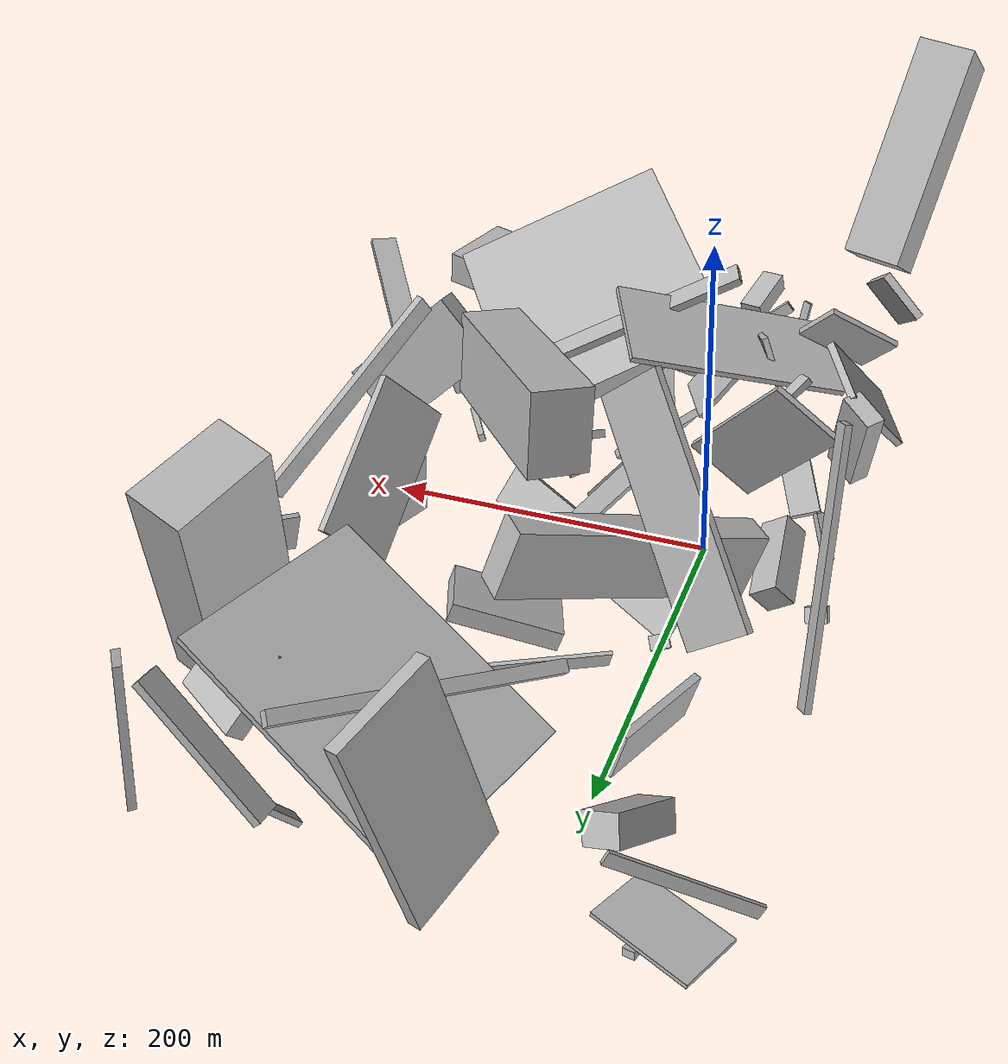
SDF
<sdf version="1.6">
 <world name="default">
  <model name="building_1">
   <static>0</static>
   <pose>24.793096692498303 168.19581139344137 49.5074049296235 1.1312948946642172 -0.8036517229261205 2.786725473333905</pose>
   <link name="link">
    <gravity>0</gravity>
    <pose>0 0 75.0 0 0 0</pose>
    <collision name="collision"><geometry><box><size>6 7 150</size></box></geometry></collision>
    <visual name="visual">
     <cast_shadows>0</cast_shadows>
     <geometry><box><size>6 7 150</size></box></geometry>
     <material>
      <script>
       <uri>model://HANNAS_wall/materials/scripts</uri>
       <uri>model://HANNAS_wall/materials/textures</uri>
       <name>vrc/HANNAS_wall</name>
      </script>
     </material>
    </visual>
   </link>
  </model>
  <model name="building_2">
   <static>0</static>
   <pose>168.8053396713834 -48.62277285303505 24.26431392203352 1.2881864655221158 0.8591324916611116 -1.2367148399571342</pose>
   <link name="link">
    <gravity>0</gravity>
    <pose>0 0 2.0 0 0 0</pose>
    <collision name="collision"><geometry><box><size>16 19 4</size></box></geometry></collision>
    <visual name="visual">
     <cast_shadows>0</cast_shadows>
     <geometry><box><size>16 19 4</size></box></geometry>
     <material>
      <script>
       <uri>model://HANNAS_wall/materials/scripts</uri>
       <uri>model://HANNAS_wall/materials/textures</uri>
       <name>vrc/HANNAS_wall</name>
      </script>
     </material>
    </visual>
   </link>
  </model>
  <model name="building_3">
   <static>0</static>
   <pose>-59.367864720709136 -232.25239375942581 92.4109905532498 0.5306030439082318 -0.10531091900524221 -0.18735043741369478</pose>
   <link name="link">
    <gravity>0</gravity>
    <pose>0 0 75.0 0 0 0</pose>
    <collision name="collision"><geometry><box><size>38 52 150</size></box></geometry></collision>
    <visual name="visual">
     <cast_shadows>0</cast_shadows>
     <geometry><box><size>38 52 150</size></box></geometry>
     <material>
      <script>
       <uri>model://HANNAS_wall/materials/scripts</uri>
       <uri>model://HANNAS_wall/materials/textures</uri>
       <name>vrc/HANNAS_wall</name>
      </script>
     </material>
    </visual>
   </link>
  </model>
  <model name="building_7">
   <static>0</static>
   <pose>124.69951320487586 -160.69138520778654 67.32807591150723 0.41972504675591227 -0.38616532295552297 -2.643007711229868</pose>
   <link name="link">
    <gravity>0</gravity>
    <pose>0 0 8.0 0 0 0</pose>
    <collision name="collision"><geometry><box><size>150 150 16</size></box></geometry></collision>
    <visual name="visual">
     <cast_shadows>0</cast_shadows>
     <geometry><box><size>150 150 16</size></box></geometry>
     <material>
      <script>
       <uri>model://HANNAS_wall/materials/scripts</uri>
       <uri>model://HANNAS_wall/materials/textures</uri>
       <name>vrc/HANNAS_wall</name>
      </script>
     </material>
    </visual>
   </link>
  </model>
  <model name="building_8">
   <static>0</static>
   <pose>204.80048753554155 -47.702159353812945 38.16444684129837 0.2839961623136981 1.0717549493889884 -0.6077870350495469</pose>
   <link name="link">
    <gravity>0</gravity>
    <pose>0 0 67.0 0 0 0</pose>
    <collision name="collision"><geometry><box><size>4 17 134</size></box></geometry></collision>
    <visual name="visual">
     <cast_shadows>0</cast_shadows>
     <geometry><box><size>4 17 134</size></box></geometry>
     <material>
      <script>
       <uri>model://HANNAS_wall/materials/scripts</uri>
       <uri>model://HANNAS_wall/materials/textures</uri>
       <name>vrc/HANNAS_wall</name>
      </script>
     </material>
    </visual>
   </link>
  </model>
  <model name="building_10">
   <static>0</static>
   <pose>-47.68959779084474 154.3647860653389 73.10178761752809 -0.33368092463802806 -0.7245051040565622 2.835484990418137</pose>
   <link name="link">
    <gravity>0</gravity>
    <pose>0 0 65.5 0 0 0</pose>
    <collision name="collision"><geometry><box><size>43 4 131</size></box></geometry></collision>
    <visual name="visual">
     <cast_shadows>0</cast_shadows>
     <geometry><box><size>43 4 131</size></box></geometry>
     <material>
      <script>
       <uri>model://HANNAS_wall/materials/scripts</uri>
       <uri>model://HANNAS_wall/materials/textures</uri>
       <name>vrc/HANNAS_wall</name>
      </script>
     </material>
    </visual>
   </link>
  </model>
  <model name="building_11">
   <static>0</static>
   <pose>38.94238117270541 254.09804892316535 76.96646925720617 1.7350891535008843 -0.11104195794203885 2.8328328251791577</pose>
   <link name="link">
    <gravity>0</gravity>
    <pose>0 0 26.5 0 0 0</pose>
    <collision name="collision"><geometry><box><size>7 114 53</size></box></geometry></collision>
    <visual name="visual">
     <cast_shadows>0</cast_shadows>
     <geometry><box><size>7 114 53</size></box></geometry>
     <material>
      <script>
       <uri>model://HANNAS_wall/materials/scripts</uri>
       <uri>model://HANNAS_wall/materials/textures</uri>
       <name>vrc/HANNAS_wall</name>
      </script>
     </material>
    </visual>
   </link>
  </model>
  <model name="building_12">
   <static>0</static>
   <pose>92.06836739142696 4.750236727504768 100.409990952442 -0.7303589296694571 -1.402763171710577 -1.6966336196243017</pose>
   <link name="link">
    <gravity>0</gravity>
    <pose>0 0 18.0 0 0 0</pose>
    <collision name="collision"><geometry><box><size>51 125 36</size></box></geometry></collision>
    <visual name="visual">
     <cast_shadows>0</cast_shadows>
     <geometry><box><size>51 125 36</size></box></geometry>
     <material>
      <script>
       <uri>model://HANNAS_wall/materials/scripts</uri>
       <uri>model://HANNAS_wall/materials/textures</uri>
       <name>vrc/HANNAS_wall</name>
      </script>
     </material>
    </visual>
   </link>
  </model>
  <model name="building_14">
   <static>0</static>
   <pose>107.75886185038104 208.34520341155167 46.10967357507414 0.040087765200739 -0.47666089245156523 -0.2999473800195148</pose>
   <link name="link">
    <gravity>0</gravity>
    <pose>0 0 2.0 0 0 0</pose>
    <collision name="collision"><geometry><box><size>150 108 4</size></box></geometry></collision>
    <visual name="visual">
     <cast_shadows>0</cast_shadows>
     <geometry><box><size>150 108 4</size></box></geometry>
     <material>
      <script>
       <uri>model://HANNAS_wall/materials/scripts</uri>
       <uri>model://HANNAS_wall/materials/textures</uri>
       <name>vrc/HANNAS_wall</name>
      </script>
     </material>
    </visual>
   </link>
  </model>
  <model name="building_17">
   <static>0</static>
   <pose>-55.43925519525918 -143.04767132898246 76.77545361847622 0.8255333455265249 0.7698998162747802 -0.45425481077730295</pose>
   <link name="link">
    <gravity>0</gravity>
    <pose>0 0 2.0 0 0 0</pose>
    <collision name="collision"><geometry><box><size>35 53 4</size></box></geometry></collision>
    <visual name="visual">
     <cast_shadows>0</cast_shadows>
     <geometry><box><size>35 53 4</size></box></geometry>
     <material>
      <script>
       <uri>model://HANNAS_wall/materials/scripts</uri>
       <uri>model://HANNAS_wall/materials/textures</uri>
       <name>vrc/HANNAS_wall</name>
      </script>
     </material>
    </visual>
   </link>
  </model>
  <model name="building_18">
   <static>0</static>
   <pose>211.10453171936953 184.67694604028543 89.60581939708521 1.8232575828191566 -0.19318669373226394 -1.87461985738655</pose>
   <link name="link">
    <gravity>0</gravity>
    <pose>0 0 16.5 0 0 0</pose>
    <collision name="collision"><geometry><box><size>55 146 33</size></box></geometry></collision>
    <visual name="visual">
     <cast_shadows>0</cast_shadows>
     <geometry><box><size>55 146 33</size></box></geometry>
     <material>
      <script>
       <uri>model://HANNAS_wall/materials/scripts</uri>
       <uri>model://HANNAS_wall/materials/textures</uri>
       <name>vrc/HANNAS_wall</name>
      </script>
     </material>
    </visual>
   </link>
  </model>
  <model name="building_21">
   <static>0</static>
   <pose>194.08084231534218 -212.58871243280262 31.631690254402187 1.581392650125628 -0.10717220341301056 -0.215393158977691</pose>
   <link name="link">
    <gravity>0</gravity>
    <pose>0 0 30.5 0 0 0</pose>
    <collision name="collision"><geometry><box><size>150 24 61</size></box></geometry></collision>
    <visual name="visual">
     <cast_shadows>0</cast_shadows>
     <geometry><box><size>150 24 61</size></box></geometry>
     <material>
      <script>
       <uri>model://HANNAS_wall/materials/scripts</uri>
       <uri>model://HANNAS_wall/materials/textures</uri>
       <name>vrc/HANNAS_wall</name>
      </script>
     </material>
    </visual>
   </link>
  </model>
  <model name="building_23">
   <static>0</static>
   <pose>-28.73925012321936 -12.545407277168431 73.49264742716169 -1.1589664787374676 -0.8212757556505275 2.659889083329974</pose>
   <link name="link">
    <gravity>0</gravity>
    <pose>0 0 2.0 0 0 0</pose>
    <collision name="collision"><geometry><box><size>91 46 4</size></box></geometry></collision>
    <visual name="visual">
     <cast_shadows>0</cast_shadows>
     <geometry><box><size>91 46 4</size></box></geometry>
     <material>
      <script>
       <uri>model://HANNAS_wall/materials/scripts</uri>
       <uri>model://HANNAS_wall/materials/textures</uri>
       <name>vrc/HANNAS_wall</name>
      </script>
     </material>
    </visual>
   </link>
  </model>
  <model name="building_24">
   <static>0</static>
   <pose>14.591894694779839 -180.31315361042851 42.802350549079534 1.2302763048712029 -0.2673526523090715 -2.6469734096374937</pose>
   <link name="link">
    <gravity>0</gravity>
    <pose>0 0 35.0 0 0 0</pose>
    <collision name="collision"><geometry><box><size>4 33 70</size></box></geometry></collision>
    <visual name="visual">
     <cast_shadows>0</cast_shadows>
     <geometry><box><size>4 33 70</size></box></geometry>
     <material>
      <script>
       <uri>model://HANNAS_wall/materials/scripts</uri>
       <uri>model://HANNAS_wall/materials/textures</uri>
       <name>vrc/HANNAS_wall</name>
      </script>
     </material>
    </visual>
   </link>
  </model>
  <model name="building_26">
   <static>0</static>
   <pose>-70.31714376284003 -124.39760215544086 47.37824749308297 0.9161456227548778 -0.4019110181256023 -1.0033505730773933</pose>
   <link name="link">
    <gravity>0</gravity>
    <pose>0 0 2.5 0 0 0</pose>
    <collision name="collision"><geometry><box><size>43 81 5</size></box></geometry></collision>
    <visual name="visual">
     <cast_shadows>0</cast_shadows>
     <geometry><box><size>43 81 5</size></box></geometry>
     <material>
      <script>
       <uri>model://HANNAS_wall/materials/scripts</uri>
       <uri>model://HANNAS_wall/materials/textures</uri>
       <name>vrc/HANNAS_wall</name>
      </script>
     </material>
    </visual>
   </link>
  </model>
  <model name="building_27">
   <static>0</static>
   <pose>196.71632096892884 272.50762240012443 60.34691920871367 0.5320310369063643 -1.355222844628276 -1.3935005106016631</pose>
   <link name="link">
    <gravity>0</gravity>
    <pose>0 0 8.0 0 0 0</pose>
    <collision name="collision"><geometry><box><size>73 4 16</size></box></geometry></collision>
    <visual name="visual">
     <cast_shadows>0</cast_shadows>
     <geometry><box><size>73 4 16</size></box></geometry>
     <material>
      <script>
       <uri>model://HANNAS_wall/materials/scripts</uri>
       <uri>model://HANNAS_wall/materials/textures</uri>
       <name>vrc/HANNAS_wall</name>
      </script>
     </material>
    </visual>
   </link>
  </model>
  <model name="building_31">
   <static>0</static>
   <pose>164.8208078475925 162.1392026932743 23.44454339594291 -0.5910642076057109 -0.30495924785667283 1.737402867334596</pose>
   <link name="link">
    <gravity>0</gravity>
    <pose>0 0 18.5 0 0 0</pose>
    <collision name="collision"><geometry><box><size>39 4 37</size></box></geometry></collision>
    <visual name="visual">
     <cast_shadows>0</cast_shadows>
     <geometry><box><size>39 4 37</size></box></geometry>
     <material>
      <script>
       <uri>model://HANNAS_wall/materials/scripts</uri>
       <uri>model://HANNAS_wall/materials/textures</uri>
       <name>vrc/HANNAS_wall</name>
      </script>
     </material>
    </visual>
   </link>
  </model>
  <model name="building_37">
   <static>0</static>
   <pose>137.51583433232963 181.42498766872015 25.23800191470125 -3.1019133106257493 -0.30303813223686765 0.7534132209978549</pose>
   <link name="link">
    <gravity>0</gravity>
    <pose>0 0 5.5 0 0 0</pose>
    <collision name="collision"><geometry><box><size>4 6 11</size></box></geometry></collision>
    <visual name="visual">
     <cast_shadows>0</cast_shadows>
     <geometry><box><size>4 6 11</size></box></geometry>
     <material>
      <script>
       <uri>model://HANNAS_wall/materials/scripts</uri>
       <uri>model://HANNAS_wall/materials/textures</uri>
       <name>vrc/HANNAS_wall</name>
      </script>
     </material>
    </visual>
   </link>
  </model>
  <model name="building_38">
   <static>0</static>
   <pose>-81.85622585892777 -79.85902239275019 35.48707502694896 1.265372610476518 0.11262050423304477 0.8223140760192229</pose>
   <link name="link">
    <gravity>0</gravity>
    <pose>0 0 12.5 0 0 0</pose>
    <collision name="collision"><geometry><box><size>13 58 25</size></box></geometry></collision>
    <visual name="visual">
     <cast_shadows>0</cast_shadows>
     <geometry><box><size>13 58 25</size></box></geometry>
     <material>
      <script>
       <uri>model://HANNAS_wall/materials/scripts</uri>
       <uri>model://HANNAS_wall/materials/textures</uri>
       <name>vrc/HANNAS_wall</name>
      </script>
     </material>
    </visual>
   </link>
  </model>
  <model name="building_39">
   <static>0</static>
   <pose>-43.62467939067638 268.54843054093453 7.390177772720591 -1.0149583974153422 1.3557874893878272 1.8964086453849316</pose>
   <link name="link">
    <gravity>0</gravity>
    <pose>0 0 3.0 0 0 0</pose>
    <collision name="collision"><geometry><box><size>4 22 6</size></box></geometry></collision>
    <visual name="visual">
     <cast_shadows>0</cast_shadows>
     <geometry><box><size>4 22 6</size></box></geometry>
     <material>
      <script>
       <uri>model://HANNAS_wall/materials/scripts</uri>
       <uri>model://HANNAS_wall/materials/textures</uri>
       <name>vrc/HANNAS_wall</name>
      </script>
     </material>
    </visual>
   </link>
  </model>
  <model name="building_42">
   <static>0</static>
   <pose>2.5605970607238735 -91.43303330353929 67.61811676619784 1.274605108122901 -0.31032448423551406 0.5585483696015138</pose>
   <link name="link">
    <gravity>0</gravity>
    <pose>0 0 32.0 0 0 0</pose>
    <collision name="collision"><geometry><box><size>150 4 64</size></box></geometry></collision>
    <visual name="visual">
     <cast_shadows>0</cast_shadows>
     <geometry><box><size>150 4 64</size></box></geometry>
     <material>
      <script>
       <uri>model://HANNAS_wall/materials/scripts</uri>
       <uri>model://HANNAS_wall/materials/textures</uri>
       <name>vrc/HANNAS_wall</name>
      </script>
     </material>
    </visual>
   </link>
  </model>
  <model name="building_43">
   <static>0</static>
   <pose>58.821212411557426 43.354791335235156 19.36550935304233 2.236260912155624 -0.09376503511660356 -0.5264561615918604</pose>
   <link name="link">
    <gravity>0</gravity>
    <pose>0 0 2.0 0 0 0</pose>
    <collision name="collision"><geometry><box><size>150 27 4</size></box></geometry></collision>
    <visual name="visual">
     <cast_shadows>0</cast_shadows>
     <geometry><box><size>150 27 4</size></box></geometry>
     <material>
      <script>
       <uri>model://HANNAS_wall/materials/scripts</uri>
       <uri>model://HANNAS_wall/materials/textures</uri>
       <name>vrc/HANNAS_wall</name>
      </script>
     </material>
    </visual>
   </link>
  </model>
  <model name="building_45">
   <static>0</static>
   <pose>27.61211438017165 30.759411747172614 20.669414505358958 1.0094985872402418 -0.8913240492226028 2.534697746085568</pose>
   <link name="link">
    <gravity>0</gravity>
    <pose>0 0 13.5 0 0 0</pose>
    <collision name="collision"><geometry><box><size>15 20 27</size></box></geometry></collision>
    <visual name="visual">
     <cast_shadows>0</cast_shadows>
     <geometry><box><size>15 20 27</size></box></geometry>
     <material>
      <script>
       <uri>model://HANNAS_wall/materials/scripts</uri>
       <uri>model://HANNAS_wall/materials/textures</uri>
       <name>vrc/HANNAS_wall</name>
      </script>
     </material>
    </visual>
   </link>
  </model>
  <model name="building_49">
   <static>0</static>
   <pose>-87.95251890614003 102.10034816414733 84.03589528166793 1.850242172636725 -0.1944566517270499 0.596191942119423</pose>
   <link name="link">
    <gravity>0</gravity>
    <pose>0 0 4.0 0 0 0</pose>
    <collision name="collision"><geometry><box><size>4 150 8</size></box></geometry></collision>
    <visual name="visual">
     <cast_shadows>0</cast_shadows>
     <geometry><box><size>4 150 8</size></box></geometry>
     <material>
      <script>
       <uri>model://HANNAS_wall/materials/scripts</uri>
       <uri>model://HANNAS_wall/materials/textures</uri>
       <name>vrc/HANNAS_wall</name>
      </script>
     </material>
    </visual>
   </link>
  </model>
  <model name="building_53">
   <static>0</static>
   <pose>228.88411336831416 93.11528386754628 54.94287110256511 0.9512311976258488 -0.19884306001032645 -0.33774789031447416</pose>
   <link name="link">
    <gravity>0</gravity>
    <pose>0 0 69.5 0 0 0</pose>
    <collision name="collision"><geometry><box><size>4 15 139</size></box></geometry></collision>
    <visual name="visual">
     <cast_shadows>0</cast_shadows>
     <geometry><box><size>4 15 139</size></box></geometry>
     <material>
      <script>
       <uri>model://HANNAS_wall/materials/scripts</uri>
       <uri>model://HANNAS_wall/materials/textures</uri>
       <name>vrc/HANNAS_wall</name>
      </script>
     </material>
    </visual>
   </link>
  </model>
  <model name="building_55">
   <static>0</static>
   <pose>220.31857396280617 -19.69613214007593 53.81113984320597 0.8156167246883899 0.13692948063860463 -1.6038663871257706</pose>
   <link name="link">
    <gravity>0</gravity>
    <pose>0 0 43.5 0 0 0</pose>
    <collision name="collision"><geometry><box><size>14 45 87</size></box></geometry></collision>
    <visual name="visual">
     <cast_shadows>0</cast_shadows>
     <geometry><box><size>14 45 87</size></box></geometry>
     <material>
      <script>
       <uri>model://HANNAS_wall/materials/scripts</uri>
       <uri>model://HANNAS_wall/materials/textures</uri>
       <name>vrc/HANNAS_wall</name>
      </script>
     </material>
    </visual>
   </link>
  </model>
  <model name="building_57">
   <static>0</static>
   <pose>16.931518370422502 101.62656755926767 75.19001400525893 1.7750623711911302 -1.1989111846395932 -2.5657098491040213</pose>
   <link name="link">
    <gravity>0</gravity>
    <pose>0 0 9.0 0 0 0</pose>
    <collision name="collision"><geometry><box><size>39 150 18</size></box></geometry></collision>
    <visual name="visual">
     <cast_shadows>0</cast_shadows>
     <geometry><box><size>39 150 18</size></box></geometry>
     <material>
      <script>
       <uri>model://HANNAS_wall/materials/scripts</uri>
       <uri>model://HANNAS_wall/materials/textures</uri>
       <name>vrc/HANNAS_wall</name>
      </script>
     </material>
    </visual>
   </link>
  </model>
  <model name="building_58">
   <static>0</static>
   <pose>32.74460744920229 -225.45943803992233 20.267960958363027 -0.9069449466090056 -0.12577745973499055 1.7348109178537219</pose>
   <link name="link">
    <gravity>0</gravity>
    <pose>0 0 21.5 0 0 0</pose>
    <collision name="collision"><geometry><box><size>4 8 43</size></box></geometry></collision>
    <visual name="visual">
     <cast_shadows>0</cast_shadows>
     <geometry><box><size>4 8 43</size></box></geometry>
     <material>
      <script>
       <uri>model://HANNAS_wall/materials/scripts</uri>
       <uri>model://HANNAS_wall/materials/textures</uri>
       <name>vrc/HANNAS_wall</name>
      </script>
     </material>
    </visual>
   </link>
  </model>
  <model name="building_59">
   <static>0</static>
   <pose>-20.411742021939634 25.271290061528187 13.879730376319802 -2.9514600816329692 0.5416412229957582 -1.8872278969736078</pose>
   <link name="link">
    <gravity>0</gravity>
    <pose>0 0 2.0 0 0 0</pose>
    <collision name="collision"><geometry><box><size>21 25 4</size></box></geometry></collision>
    <visual name="visual">
     <cast_shadows>0</cast_shadows>
     <geometry><box><size>21 25 4</size></box></geometry>
     <material>
      <script>
       <uri>model://HANNAS_wall/materials/scripts</uri>
       <uri>model://HANNAS_wall/materials/textures</uri>
       <name>vrc/HANNAS_wall</name>
      </script>
     </material>
    </visual>
   </link>
  </model>
  <model name="building_61">
   <static>0</static>
   <pose>49.76261572657785 -97.04411265036396 17.546591919241337 1.3222816537106041 0.0013243086939325726 1.8734082064379944</pose>
   <link name="link">
    <gravity>0</gravity>
    <pose>0 0 4.0 0 0 0</pose>
    <collision name="collision"><geometry><box><size>150 22 8</size></box></geometry></collision>
    <visual name="visual">
     <cast_shadows>0</cast_shadows>
     <geometry><box><size>150 22 8</size></box></geometry>
     <material>
      <script>
       <uri>model://HANNAS_wall/materials/scripts</uri>
       <uri>model://HANNAS_wall/materials/textures</uri>
       <name>vrc/HANNAS_wall</name>
      </script>
     </material>
    </visual>
   </link>
  </model>
  <model name="building_63">
   <static>0</static>
   <pose>225.43547424432165 81.99778357618378 20.301517386214215 -0.36026378423157224 1.3320967884673363 0.5224890897217168</pose>
   <link name="link">
    <gravity>0</gravity>
    <pose>0 0 25.5 0 0 0</pose>
    <collision name="collision"><geometry><box><size>23 4 51</size></box></geometry></collision>
    <visual name="visual">
     <cast_shadows>0</cast_shadows>
     <geometry><box><size>23 4 51</size></box></geometry>
     <material>
      <script>
       <uri>model://HANNAS_wall/materials/scripts</uri>
       <uri>model://HANNAS_wall/materials/textures</uri>
       <name>vrc/HANNAS_wall</name>
      </script>
     </material>
    </visual>
   </link>
  </model>
  <model name="building_65">
   <static>0</static>
   <pose>93.80986663219501 -21.832815948808612 44.381941627869104 -0.5483116932256303 0.265778876825836 -2.2187864084591493</pose>
   <link name="link">
    <gravity>0</gravity>
    <pose>0 0 2.5 0 0 0</pose>
    <collision name="collision"><geometry><box><size>43 20 5</size></box></geometry></collision>
    <visual name="visual">
     <cast_shadows>0</cast_shadows>
     <geometry><box><size>43 20 5</size></box></geometry>
     <material>
      <script>
       <uri>model://HANNAS_wall/materials/scripts</uri>
       <uri>model://HANNAS_wall/materials/textures</uri>
       <name>vrc/HANNAS_wall</name>
      </script>
     </material>
    </visual>
   </link>
  </model>
  <model name="building_66">
   <static>0</static>
   <pose>140.8855847534124 -277.2188506767926 26.99880705084997 -0.2196350703189786 -1.0258758570064128 -0.7613035524587016</pose>
   <link name="link">
    <gravity>0</gravity>
    <pose>0 0 2.0 0 0 0</pose>
    <collision name="collision"><geometry><box><size>20 10 4</size></box></geometry></collision>
    <visual name="visual">
     <cast_shadows>0</cast_shadows>
     <geometry><box><size>20 10 4</size></box></geometry>
     <material>
      <script>
       <uri>model://HANNAS_wall/materials/scripts</uri>
       <uri>model://HANNAS_wall/materials/textures</uri>
       <name>vrc/HANNAS_wall</name>
      </script>
     </material>
    </visual>
   </link>
  </model>
  <model name="building_70">
   <static>0</static>
   <pose>175.05219932272573 65.27245435050912 64.22077226952011 1.3672509985162633 -0.6780545306836749 -1.6648731954634963</pose>
   <link name="link">
    <gravity>0</gravity>
    <pose>0 0 2.0 0 0 0</pose>
    <collision name="collision"><geometry><box><size>93 57 4</size></box></geometry></collision>
    <visual name="visual">
     <cast_shadows>0</cast_shadows>
     <geometry><box><size>93 57 4</size></box></geometry>
     <material>
      <script>
       <uri>model://HANNAS_wall/materials/scripts</uri>
       <uri>model://HANNAS_wall/materials/textures</uri>
       <name>vrc/HANNAS_wall</name>
      </script>
     </material>
    </visual>
   </link>
  </model>
  <model name="building_71">
   <static>0</static>
   <pose>-16.577647461384863 236.15488212467878 25.909467776922106 2.45196745391425 -0.8843490680722537 -1.1945348171096093</pose>
   <link name="link">
    <gravity>0</gravity>
    <pose>0 0 21.5 0 0 0</pose>
    <collision name="collision"><geometry><box><size>16 21 43</size></box></geometry></collision>
    <visual name="visual">
     <cast_shadows>0</cast_shadows>
     <geometry><box><size>16 21 43</size></box></geometry>
     <material>
      <script>
       <uri>model://HANNAS_wall/materials/scripts</uri>
       <uri>model://HANNAS_wall/materials/textures</uri>
       <name>vrc/HANNAS_wall</name>
      </script>
     </material>
    </visual>
   </link>
  </model>
  <model name="building_73">
   <static>0</static>
   <pose>83.82700029584832 -123.5510949946182 84.51385684880276 1.695322745778541 -0.4591133849156579 -2.8382238653630925</pose>
   <link name="link">
    <gravity>0</gravity>
    <pose>0 0 8.5 0 0 0</pose>
    <collision name="collision"><geometry><box><size>150 5 17</size></box></geometry></collision>
    <visual name="visual">
     <cast_shadows>0</cast_shadows>
     <geometry><box><size>150 5 17</size></box></geometry>
     <material>
      <script>
       <uri>model://HANNAS_wall/materials/scripts</uri>
       <uri>model://HANNAS_wall/materials/textures</uri>
       <name>vrc/HANNAS_wall</name>
      </script>
     </material>
    </visual>
   </link>
  </model>
  <model name="building_74">
   <static>0</static>
   <pose>223.2280508129984 -126.9844210714586 20.781740974930027 -0.2413076272689901 -0.1475042892039002 3.1120847054817355</pose>
   <link name="link">
    <gravity>0</gravity>
    <pose>0 0 12.0 0 0 0</pose>
    <collision name="collision"><geometry><box><size>14 15 24</size></box></geometry></collision>
    <visual name="visual">
     <cast_shadows>0</cast_shadows>
     <geometry><box><size>14 15 24</size></box></geometry>
     <material>
      <script>
       <uri>model://HANNAS_wall/materials/scripts</uri>
       <uri>model://HANNAS_wall/materials/textures</uri>
       <name>vrc/HANNAS_wall</name>
      </script>
     </material>
    </visual>
   </link>
  </model>
  <model name="building_75">
   <static>0</static>
   <pose>-22.153283017429462 187.28533950228908 32.36957594749556 -0.25233477368323315 -0.1352848508751225 1.236926329846472</pose>
   <link name="link">
    <gravity>0</gravity>
    <pose>0 0 13.5 0 0 0</pose>
    <collision name="collision"><geometry><box><size>58 4 27</size></box></geometry></collision>
    <visual name="visual">
     <cast_shadows>0</cast_shadows>
     <geometry><box><size>58 4 27</size></box></geometry>
     <material>
      <script>
       <uri>model://HANNAS_wall/materials/scripts</uri>
       <uri>model://HANNAS_wall/materials/textures</uri>
       <name>vrc/HANNAS_wall</name>
      </script>
     </material>
    </visual>
   </link>
  </model>
  <model name="building_80">
   <static>0</static>
   <pose>38.63491137514433 4.594944965637403 59.371042757954825 0.2776067486324903 -0.8156083146913549 2.2949503507749256</pose>
   <link name="link">
    <gravity>0</gravity>
    <pose>0 0 2.0 0 0 0</pose>
    <collision name="collision"><geometry><box><size>150 26 4</size></box></geometry></collision>
    <visual name="visual">
     <cast_shadows>0</cast_shadows>
     <geometry><box><size>150 26 4</size></box></geometry>
     <material>
      <script>
       <uri>model://HANNAS_wall/materials/scripts</uri>
       <uri>model://HANNAS_wall/materials/textures</uri>
       <name>vrc/HANNAS_wall</name>
      </script>
     </material>
    </visual>
   </link>
  </model>
  <model name="building_83">
   <static>0</static>
   <pose>92.06924415205204 208.21047230049155 12.051718227953002 2.209017377116133 -0.7389176613654993 0.7066827493814503</pose>
   <link name="link">
    <gravity>0</gravity>
    <pose>0 0 2.0 0 0 0</pose>
    <collision name="collision"><geometry><box><size>23 4 4</size></box></geometry></collision>
    <visual name="visual">
     <cast_shadows>0</cast_shadows>
     <geometry><box><size>23 4 4</size></box></geometry>
     <material>
      <script>
       <uri>model://HANNAS_wall/materials/scripts</uri>
       <uri>model://HANNAS_wall/materials/textures</uri>
       <name>vrc/HANNAS_wall</name>
      </script>
     </material>
    </visual>
   </link>
  </model>
  <model name="building_85">
   <static>0</static>
   <pose>214.80191576003028 -155.548790007577 35.39624398896075 -2.9142970142879303 -0.708030771716697 0.6843463305616643</pose>
   <link name="link">
    <gravity>0</gravity>
    <pose>0 0 2.5 0 0 0</pose>
    <collision name="collision"><geometry><box><size>4 24 5</size></box></geometry></collision>
    <visual name="visual">
     <cast_shadows>0</cast_shadows>
     <geometry><box><size>4 24 5</size></box></geometry>
     <material>
      <script>
       <uri>model://HANNAS_wall/materials/scripts</uri>
       <uri>model://HANNAS_wall/materials/textures</uri>
       <name>vrc/HANNAS_wall</name>
      </script>
     </material>
    </visual>
   </link>
  </model>
  <model name="building_87">
   <static>0</static>
   <pose>-1.2513289999316126 95.83478894001728 9.868467499968828 2.432790423364329 0.21830918743382072 0.3482812398590837</pose>
   <link name="link">
    <gravity>0</gravity>
    <pose>0 0 2.0 0 0 0</pose>
    <collision name="collision"><geometry><box><size>11 8 4</size></box></geometry></collision>
    <visual name="visual">
     <cast_shadows>0</cast_shadows>
     <geometry><box><size>11 8 4</size></box></geometry>
     <material>
      <script>
       <uri>model://HANNAS_wall/materials/scripts</uri>
       <uri>model://HANNAS_wall/materials/textures</uri>
       <name>vrc/HANNAS_wall</name>
      </script>
     </material>
    </visual>
   </link>
  </model>
  <model name="building_89">
   <static>0</static>
   <pose>32.58969840702423 -251.52706246638138 27.32961774164906 0.1274469809163145 -1.2921570376700868 1.2048563735678184</pose>
   <link name="link">
    <gravity>0</gravity>
    <pose>0 0 19.5 0 0 0</pose>
    <collision name="collision"><geometry><box><size>14 16 39</size></box></geometry></collision>
    <visual name="visual">
     <cast_shadows>0</cast_shadows>
     <geometry><box><size>14 16 39</size></box></geometry>
     <material>
      <script>
       <uri>model://HANNAS_wall/materials/scripts</uri>
       <uri>model://HANNAS_wall/materials/textures</uri>
       <name>vrc/HANNAS_wall</name>
      </script>
     </material>
    </visual>
   </link>
  </model>
  <model name="building_92">
   <static>0</static>
   <pose>0.5090650347303756 -204.80215245952652 24.927472472730017 2.3413847447961107 -0.46986540527988385 -1.3602299728497087</pose>
   <link name="link">
    <gravity>0</gravity>
    <pose>0 0 5.5 0 0 0</pose>
    <collision name="collision"><geometry><box><size>4 17 11</size></box></geometry></collision>
    <visual name="visual">
     <cast_shadows>0</cast_shadows>
     <geometry><box><size>4 17 11</size></box></geometry>
     <material>
      <script>
       <uri>model://HANNAS_wall/materials/scripts</uri>
       <uri>model://HANNAS_wall/materials/textures</uri>
       <name>vrc/HANNAS_wall</name>
      </script>
     </material>
    </visual>
   </link>
  </model>
  <model name="building_93">
   <static>0</static>
   <pose>-38.7038021801134 -37.32581029768242 33.61391341221532 1.2125275817867633 -0.712576367716019 -1.0516353812897146</pose>
   <link name="link">
    <gravity>0</gravity>
    <pose>0 0 9.0 0 0 0</pose>
    <collision name="collision"><geometry><box><size>46 9 18</size></box></geometry></collision>
    <visual name="visual">
     <cast_shadows>0</cast_shadows>
     <geometry><box><size>46 9 18</size></box></geometry>
     <material>
      <script>
       <uri>model://HANNAS_wall/materials/scripts</uri>
       <uri>model://HANNAS_wall/materials/textures</uri>
       <name>vrc/HANNAS_wall</name>
      </script>
     </material>
    </visual>
   </link>
  </model>
  <model name="building_96">
   <static>0</static>
   <pose>179.49838816637805 235.36562917994056 36.082554423803806 0.8497129224295354 0.010509223995795472 -0.5381178364814949</pose>
   <link name="link">
    <gravity>0</gravity>
    <pose>0 0 21.5 0 0 0</pose>
    <collision name="collision"><geometry><box><size>46 11 43</size></box></geometry></collision>
    <visual name="visual">
     <cast_shadows>0</cast_shadows>
     <geometry><box><size>46 11 43</size></box></geometry>
     <material>
      <script>
       <uri>model://HANNAS_wall/materials/scripts</uri>
       <uri>model://HANNAS_wall/materials/textures</uri>
       <name>vrc/HANNAS_wall</name>
      </script>
     </material>
    </visual>
   </link>
  </model>
  <model name="building_97">
   <static>0</static>
   <pose>85.58435272867283 99.30770974913675 27.297824088318954 1.3335072858158756 -1.1694253434254736 -2.5197238649396696</pose>
   <link name="link">
    <gravity>0</gravity>
    <pose>0 0 18.0 0 0 0</pose>
    <collision name="collision"><geometry><box><size>11 61 36</size></box></geometry></collision>
    <visual name="visual">
     <cast_shadows>0</cast_shadows>
     <geometry><box><size>11 61 36</size></box></geometry>
     <material>
      <script>
       <uri>model://HANNAS_wall/materials/scripts</uri>
       <uri>model://HANNAS_wall/materials/textures</uri>
       <name>vrc/HANNAS_wall</name>
      </script>
     </material>
    </visual>
   </link>
  </model>
  <model name="building_98">
   <static>0</static>
   <pose>55.60697928948896 66.72845525537231 56.356685323096706 2.0691444720681176 -0.4851770470110139 -0.7364748682767923</pose>
   <link name="link">
    <gravity>0</gravity>
    <pose>0 0 2.0 0 0 0</pose>
    <collision name="collision"><geometry><box><size>12 104 4</size></box></geometry></collision>
    <visual name="visual">
     <cast_shadows>0</cast_shadows>
     <geometry><box><size>12 104 4</size></box></geometry>
     <material>
      <script>
       <uri>model://HANNAS_wall/materials/scripts</uri>
       <uri>model://HANNAS_wall/materials/textures</uri>
       <name>vrc/HANNAS_wall</name>
      </script>
     </material>
    </visual>
   </link>
  </model>
  <model name="building_99">
   <static>0</static>
   <pose>21.637879863166578 -131.31566488384007 30.36169668491132 -0.9909702469614504 -0.9845071911856648 -3.073367731246807</pose>
   <link name="link">
    <gravity>0</gravity>
    <pose>0 0 15.0 0 0 0</pose>
    <collision name="collision"><geometry><box><size>57 4 30</size></box></geometry></collision>
    <visual name="visual">
     <cast_shadows>0</cast_shadows>
     <geometry><box><size>57 4 30</size></box></geometry>
     <material>
      <script>
       <uri>model://HANNAS_wall/materials/scripts</uri>
       <uri>model://HANNAS_wall/materials/textures</uri>
       <name>vrc/HANNAS_wall</name>
      </script>
     </material>
    </visual>
   </link>
  </model>
  <model name="building_102">
   <static>0</static>
   <pose>-67.78939336113186 -271.2242465041216 42.774099823094446 0.8416697563942064 -0.7595257187989367 -0.22580798463492835</pose>
   <link name="link">
    <gravity>0</gravity>
    <pose>0 0 3.0 0 0 0</pose>
    <collision name="collision"><geometry><box><size>39 44 6</size></box></geometry></collision>
    <visual name="visual">
     <cast_shadows>0</cast_shadows>
     <geometry><box><size>39 44 6</size></box></geometry>
     <material>
      <script>
       <uri>model://HANNAS_wall/materials/scripts</uri>
       <uri>model://HANNAS_wall/materials/textures</uri>
       <name>vrc/HANNAS_wall</name>
      </script>
     </material>
    </visual>
   </link>
  </model>
  <model name="building_104">
   <static>0</static>
   <pose>62.504974172403664 -180.5315511178188 27.533291774635384 -0.11148956340307513 -1.3698186970063946 1.3963813992102205</pose>
   <link name="link">
    <gravity>0</gravity>
    <pose>0 0 2.5 0 0 0</pose>
    <collision name="collision"><geometry><box><size>46 45 5</size></box></geometry></collision>
    <visual name="visual">
     <cast_shadows>0</cast_shadows>
     <geometry><box><size>46 45 5</size></box></geometry>
     <material>
      <script>
       <uri>model://HANNAS_wall/materials/scripts</uri>
       <uri>model://HANNAS_wall/materials/textures</uri>
       <name>vrc/HANNAS_wall</name>
      </script>
     </material>
    </visual>
   </link>
  </model>
  <model name="building_105">
   <static>0</static>
   <pose>-70.48249972733733 -6.213109287844009 24.287353342270382 -3.002941632717045 -0.43807630222154637 0.22585869245894238</pose>
   <link name="link">
    <gravity>0</gravity>
    <pose>0 0 2.0 0 0 0</pose>
    <collision name="collision"><geometry><box><size>6 51 4</size></box></geometry></collision>
    <visual name="visual">
     <cast_shadows>0</cast_shadows>
     <geometry><box><size>6 51 4</size></box></geometry>
     <material>
      <script>
       <uri>model://HANNAS_wall/materials/scripts</uri>
       <uri>model://HANNAS_wall/materials/textures</uri>
       <name>vrc/HANNAS_wall</name>
      </script>
     </material>
    </visual>
   </link>
  </model>
  <model name="building_106">
   <static>0</static>
   <pose>66.31688250920857 -43.67956896630433 25.70116797640635 -0.44030581628703436 0.5046036956038358 2.1987532480915095</pose>
   <link name="link">
    <gravity>0</gravity>
    <pose>0 0 26.0 0 0 0</pose>
    <collision name="collision"><geometry><box><size>5 9 52</size></box></geometry></collision>
    <visual name="visual">
     <cast_shadows>0</cast_shadows>
     <geometry><box><size>5 9 52</size></box></geometry>
     <material>
      <script>
       <uri>model://HANNAS_wall/materials/scripts</uri>
       <uri>model://HANNAS_wall/materials/textures</uri>
       <name>vrc/HANNAS_wall</name>
      </script>
     </material>
    </visual>
   </link>
  </model>
  <model name="building_107">
   <static>0</static>
   <pose>128.13947050754567 271.8753751233263 25.31467665630254 1.4561993820692507 0.5601211634916488 1.0096654299361718</pose>
   <link name="link">
    <gravity>0</gravity>
    <pose>0 0 4.0 0 0 0</pose>
    <collision name="collision"><geometry><box><size>3 54 8</size></box></geometry></collision>
    <visual name="visual">
     <cast_shadows>0</cast_shadows>
     <geometry><box><size>3 54 8</size></box></geometry>
     <material>
      <script>
       <uri>model://HANNAS_wall/materials/scripts</uri>
       <uri>model://HANNAS_wall/materials/textures</uri>
       <name>vrc/HANNAS_wall</name>
      </script>
     </material>
    </visual>
   </link>
  </model>
  <model name="building_108">
   <static>0</static>
   <pose>-55.4875460059079 268.9437253179658 19.159810660493775 -2.992914064961674 0.015672746122818507 -0.40342852825570774</pose>
   <link name="link">
    <gravity>0</gravity>
    <pose>0 0 1.0 0 0 0</pose>
    <collision name="collision"><geometry><box><size>52 33 2</size></box></geometry></collision>
    <visual name="visual">
     <cast_shadows>0</cast_shadows>
     <geometry><box><size>52 33 2</size></box></geometry>
     <material>
      <script>
       <uri>model://HANNAS_wall/materials/scripts</uri>
       <uri>model://HANNAS_wall/materials/textures</uri>
       <name>vrc/HANNAS_wall</name>
      </script>
     </material>
    </visual>
   </link>
  </model>
  <model name="building_111">
   <static>0</static>
   <pose>-6.905471696279782 -268.4067140629951 16.4571265277996 -1.4438404540214116 -1.3351006403408925 -2.281410899929859</pose>
   <link name="link">
    <gravity>0</gravity>
    <pose>0 0 3.5 0 0 0</pose>
    <collision name="collision"><geometry><box><size>30 2 7</size></box></geometry></collision>
    <visual name="visual">
     <cast_shadows>0</cast_shadows>
     <geometry><box><size>30 2 7</size></box></geometry>
     <material>
      <script>
       <uri>model://HANNAS_wall/materials/scripts</uri>
       <uri>model://HANNAS_wall/materials/textures</uri>
       <name>vrc/HANNAS_wall</name>
      </script>
     </material>
    </visual>
   </link>
  </model>
  <model name="building_114">
   <static>0</static>
   <pose>104.28623557919099 -52.129939711188825 11.840047790373672 2.0148180892371905 -0.0958941810229166 -2.303514710677977</pose>
   <link name="link">
    <gravity>0</gravity>
    <pose>0 0 6.5 0 0 0</pose>
    <collision name="collision"><geometry><box><size>12 9 13</size></box></geometry></collision>
    <visual name="visual">
     <cast_shadows>0</cast_shadows>
     <geometry><box><size>12 9 13</size></box></geometry>
     <material>
      <script>
       <uri>model://HANNAS_wall/materials/scripts</uri>
       <uri>model://HANNAS_wall/materials/textures</uri>
       <name>vrc/HANNAS_wall</name>
      </script>
     </material>
    </visual>
   </link>
  </model>
  <model name="building_116">
   <static>0</static>
   <pose>-5.374964727525728 -71.27161692033214 34.89429114626334 1.0446963097175281 0.11696119579815828 -0.7379437387553706</pose>
   <link name="link">
    <gravity>0</gravity>
    <pose>0 0 28.5 0 0 0</pose>
    <collision name="collision"><geometry><box><size>8 5 57</size></box></geometry></collision>
    <visual name="visual">
     <cast_shadows>0</cast_shadows>
     <geometry><box><size>8 5 57</size></box></geometry>
     <material>
      <script>
       <uri>model://HANNAS_wall/materials/scripts</uri>
       <uri>model://HANNAS_wall/materials/textures</uri>
       <name>vrc/HANNAS_wall</name>
      </script>
     </material>
    </visual>
   </link>
  </model>
  <model name="building_119">
   <static>0</static>
   <pose>180.26762656469336 30.313327559356452 32.199393930755846 -3.121793006345831 -1.4925103396409052 2.7728886760908567</pose>
   <link name="link">
    <gravity>0</gravity>
    <pose>0 0 2.5 0 0 0</pose>
    <collision name="collision"><geometry><box><size>55 27 5</size></box></geometry></collision>
    <visual name="visual">
     <cast_shadows>0</cast_shadows>
     <geometry><box><size>55 27 5</size></box></geometry>
     <material>
      <script>
       <uri>model://HANNAS_wall/materials/scripts</uri>
       <uri>model://HANNAS_wall/materials/textures</uri>
       <name>vrc/HANNAS_wall</name>
      </script>
     </material>
    </visual>
   </link>
  </model>
  <model name="building_120">
   <static>0</static>
   <pose>-59.625459676868196 250.83095351390688 25.202334861096844 1.336198883077576 -0.9964030378917716 -2.4670257599512238</pose>
   <link name="link">
    <gravity>0</gravity>
    <pose>0 0 1.0 0 0 0</pose>
    <collision name="collision"><geometry><box><size>7 80 2</size></box></geometry></collision>
    <visual name="visual">
     <cast_shadows>0</cast_shadows>
     <geometry><box><size>7 80 2</size></box></geometry>
     <material>
      <script>
       <uri>model://HANNAS_wall/materials/scripts</uri>
       <uri>model://HANNAS_wall/materials/textures</uri>
       <name>vrc/HANNAS_wall</name>
      </script>
     </material>
    </visual>
   </link>
  </model>
  <model name="building_122">
   <static>0</static>
   <pose>-76.62319232978581 44.525761247210326 12.492369818264793 2.9581049023092527 0.6535523778722926 -1.5487190571228573</pose>
   <link name="link">
    <gravity>0</gravity>
    <pose>0 0 4.5 0 0 0</pose>
    <collision name="collision"><geometry><box><size>16 12 9</size></box></geometry></collision>
    <visual name="visual">
     <cast_shadows>0</cast_shadows>
     <geometry><box><size>16 12 9</size></box></geometry>
     <material>
      <script>
       <uri>model://HANNAS_wall/materials/scripts</uri>
       <uri>model://HANNAS_wall/materials/textures</uri>
       <name>vrc/HANNAS_wall</name>
      </script>
     </material>
    </visual>
   </link>
  </model>
  <model name="building_124">
   <static>0</static>
   <pose>184.80510608000813 129.45705896480982 25.722482917713016 2.1927477255254773 -0.9041976010441174 -0.6452565371951136</pose>
   <link name="link">
    <gravity>0</gravity>
    <pose>0 0 3.5 0 0 0</pose>
    <collision name="collision"><geometry><box><size>3 43 7</size></box></geometry></collision>
    <visual name="visual">
     <cast_shadows>0</cast_shadows>
     <geometry><box><size>3 43 7</size></box></geometry>
     <material>
      <script>
       <uri>model://HANNAS_wall/materials/scripts</uri>
       <uri>model://HANNAS_wall/materials/textures</uri>
       <name>vrc/HANNAS_wall</name>
      </script>
     </material>
    </visual>
   </link>
  </model>
  <model name="building_125">
   <static>0</static>
   <pose>16.625208194978825 -17.318902067549423 30.684746767141963 1.8176127573768845 -0.9940816053486056 -0.2315955702418926</pose>
   <link name="link">
    <gravity>0</gravity>
    <pose>0 0 4.0 0 0 0</pose>
    <collision name="collision"><geometry><box><size>2 9 8</size></box></geometry></collision>
    <visual name="visual">
     <cast_shadows>0</cast_shadows>
     <geometry><box><size>2 9 8</size></box></geometry>
     <material>
      <script>
       <uri>model://HANNAS_wall/materials/scripts</uri>
       <uri>model://HANNAS_wall/materials/textures</uri>
       <name>vrc/HANNAS_wall</name>
      </script>
     </material>
    </visual>
   </link>
  </model>
  <model name="building_127">
   <static>0</static>
   <pose>152.7684519238634 -80.0151728085474 54.99961079770499 1.6895667778558827 1.196841019540529 -3.123450574036748</pose>
   <link name="link">
    <gravity>0</gravity>
    <pose>0 0 9.0 0 0 0</pose>
    <collision name="collision"><geometry><box><size>11 80 18</size></box></geometry></collision>
    <visual name="visual">
     <cast_shadows>0</cast_shadows>
     <geometry><box><size>11 80 18</size></box></geometry>
     <material>
      <script>
       <uri>model://HANNAS_wall/materials/scripts</uri>
       <uri>model://HANNAS_wall/materials/textures</uri>
       <name>vrc/HANNAS_wall</name>
      </script>
     </material>
    </visual>
   </link>
  </model>
  <model name="building_128">
   <static>0</static>
   <pose>51.109842261069865 142.18336447681156 22.858168436509015 2.6142487344569605 -0.038971652598135204 0.49555774554591286</pose>
   <link name="link">
    <gravity>0</gravity>
    <pose>0 0 9.5 0 0 0</pose>
    <collision name="collision"><geometry><box><size>80 2 19</size></box></geometry></collision>
    <visual name="visual">
     <cast_shadows>0</cast_shadows>
     <geometry><box><size>80 2 19</size></box></geometry>
     <material>
      <script>
       <uri>model://HANNAS_wall/materials/scripts</uri>
       <uri>model://HANNAS_wall/materials/textures</uri>
       <name>vrc/HANNAS_wall</name>
      </script>
     </material>
    </visual>
   </link>
  </model>
  <model name="building_132">
   <static>0</static>
   <pose>-54.18914056192186 61.6927035903508 25.881050574757346 -1.2034499247183585 -0.6335107885010378 3.0074693751111305</pose>
   <link name="link">
    <gravity>0</gravity>
    <pose>0 0 24.0 0 0 0</pose>
    <collision name="collision"><geometry><box><size>18 17 48</size></box></geometry></collision>
    <visual name="visual">
     <cast_shadows>0</cast_shadows>
     <geometry><box><size>18 17 48</size></box></geometry>
     <material>
      <script>
       <uri>model://HANNAS_wall/materials/scripts</uri>
       <uri>model://HANNAS_wall/materials/textures</uri>
       <name>vrc/HANNAS_wall</name>
      </script>
     </material>
    </visual>
   </link>
  </model>
  <model name="building_134">
   <static>0</static>
   <pose>118.26766285391278 286.6222036224218 41.934871909639455 -0.15460452236365035 -0.7504760381573952 -3.0728857228323023</pose>
   <link name="link">
    <gravity>0</gravity>
    <pose>0 0 40.0 0 0 0</pose>
    <collision name="collision"><geometry><box><size>5 12 80</size></box></geometry></collision>
    <visual name="visual">
     <cast_shadows>0</cast_shadows>
     <geometry><box><size>5 12 80</size></box></geometry>
     <material>
      <script>
       <uri>model://HANNAS_wall/materials/scripts</uri>
       <uri>model://HANNAS_wall/materials/textures</uri>
       <name>vrc/HANNAS_wall</name>
      </script>
     </material>
    </visual>
   </link>
  </model>
 </world>
</sdf>
